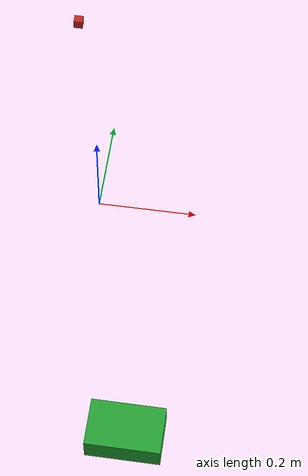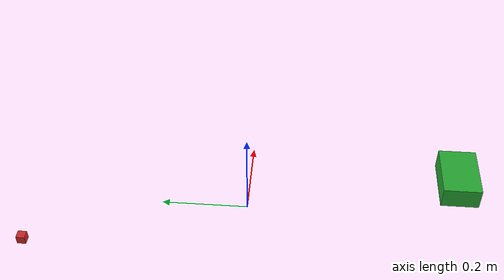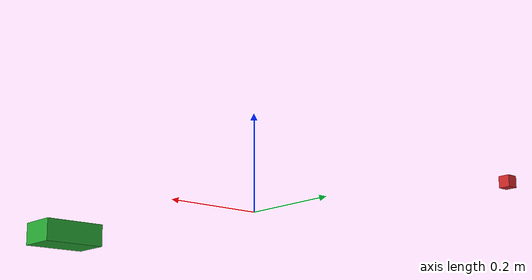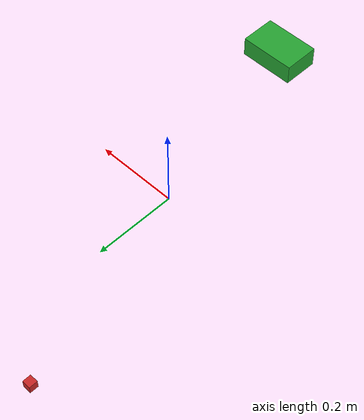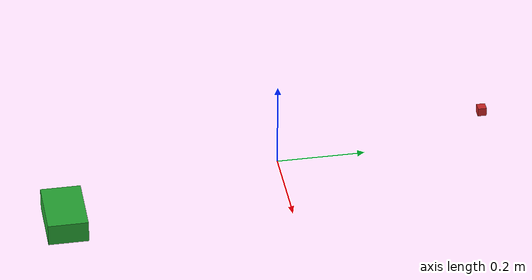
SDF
<?xml version='1.0'?>
<sdf version='1.7'>
  <model name='arm_move_models'>
    <link name='link_0'>
      <inertial>
        <mass>0.001</mass>
        <inertia>
          <ixx>7e-08</ixx>
          <ixy>0</ixy>
          <ixz>0</ixz>
          <iyy>7e-08</iyy>
          <iyz>0</iyz>
          <izz>7e-08</izz>
        </inertia>
        <pose>0 0 0 0 -0 0</pose>
      </inertial>
      <pose>-0.129588 0.500236 -0.006354 0 -0 0</pose>
      <gravity>1</gravity>
      <self_collide>0</self_collide>
      <kinematic>0</kinematic>
      <enable_wind>0</enable_wind>
      <visual name='visual'>
        <pose>0 0 0 0 -0 0</pose>
        <geometry>
          <box>
            <size>0.02 0.02 0.02</size>
          </box>
        </geometry>
        <material>
          <lighting>1</lighting>
          <script>
            <uri>file://media/materials/scripts/gazebo.material</uri>
            <name>Gazebo/Red</name>
          </script>
          <shader type='pixel'>
            <normal_map>__default__</normal_map>
          </shader>
          <ambient>0.3 0.3 0.3 1</ambient>
          <diffuse>0.7 0.7 0.7 1</diffuse>
          <specular>0.01 0.01 0.01 1</specular>
          <emissive>0 0 0 1</emissive>
        </material>
        <transparency>0</transparency>
        <cast_shadows>1</cast_shadows>
      </visual>
      <collision name='collision'>
        <laser_retro>0</laser_retro>
        <max_contacts>10</max_contacts>
        <pose>0 0 0 0 -0 0</pose>
        <geometry>
          <box>
            <size>0.02 0.02 0.02</size>
          </box>
        </geometry>
        <surface>
          <friction>
            <ode>
              <mu>100</mu>
              <mu2>100</mu2>
              <fdir1>0 0 0</fdir1>
              <slip1>0</slip1>
              <slip2>0</slip2>
            </ode>
            <torsional>
              <coefficient>1</coefficient>
              <patch_radius>0</patch_radius>
              <surface_radius>0</surface_radius>
              <use_patch_radius>1</use_patch_radius>
              <ode>
                <slip>0</slip>
              </ode>
            </torsional>
          </friction>
          <bounce>
            <restitution_coefficient>0</restitution_coefficient>
            <threshold>1e+06</threshold>
          </bounce>
          <contact>
            <collide_without_contact>0</collide_without_contact>
            <collide_without_contact_bitmask>1</collide_without_contact_bitmask>
            <collide_bitmask>1</collide_bitmask>
            <ode>
              <soft_cfm>0</soft_cfm>
              <soft_erp>0.2</soft_erp>
              <kp>1e+13</kp>
              <kd>1</kd>
              <max_vel>0.01</max_vel>
              <min_depth>0</min_depth>
            </ode>
            <bullet>
              <split_impulse>1</split_impulse>
              <split_impulse_penetration_threshold>-0.01</split_impulse_penetration_threshold>
              <soft_cfm>0</soft_cfm>
              <soft_erp>0.2</soft_erp>
              <kp>1e+13</kp>
              <kd>1</kd>
            </bullet>
          </contact>
        </surface>
      </collision>
    </link>
    <link name='link_1'>
      <inertial>
        <mass>0.1</mass>
        <inertia>
          <ixx>8.833e-05</ixx>
          <ixy>0</ixy>
          <ixz>0</ixz>
          <iyy>0.00018417</iyy>
          <iyz>0</iyz>
          <izz>0.00023083</izz>
        </inertia>
        <pose>0 0 0 0 -0 0</pose>
      </inertial>
      <pose>0.129587 -0.500236 0.006354 0 -0 0</pose>
      <gravity>1</gravity>
      <self_collide>0</self_collide>
      <kinematic>0</kinematic>
      <enable_wind>0</enable_wind>
      <visual name='visual'>
        <pose>0 0 0 0 -0 0</pose>
        <geometry>
          <box>
            <size>0.14 0.09 0.05</size>
          </box>
        </geometry>
        <material>
          <lighting>1</lighting>
          <script>
            <uri>file://media/materials/scripts/gazebo.material</uri>
            <name>Gazebo/Green</name>
          </script>
          <shader type='pixel'>
            <normal_map>__default__</normal_map>
          </shader>
          <ambient>0.3 0.3 0.3 1</ambient>
          <diffuse>0.7 0.7 0.7 1</diffuse>
          <specular>0.01 0.01 0.01 1</specular>
          <emissive>0 0 0 1</emissive>
        </material>
        <transparency>0</transparency>
        <cast_shadows>1</cast_shadows>
      </visual>
      <collision name='collision'>
        <laser_retro>0</laser_retro>
        <max_contacts>10</max_contacts>
        <pose>0 0 0 0 -0 0</pose>
        <geometry>
          <box>
            <size>0.14 0.09 0.05</size>
          </box>
        </geometry>
        <surface>
          <friction>
            <ode>
              <mu>1</mu>
              <mu2>1</mu2>
              <fdir1>0 0 0</fdir1>
              <slip1>0</slip1>
              <slip2>0</slip2>
            </ode>
            <torsional>
              <coefficient>1</coefficient>
              <patch_radius>0</patch_radius>
              <surface_radius>0</surface_radius>
              <use_patch_radius>1</use_patch_radius>
              <ode>
                <slip>0</slip>
              </ode>
            </torsional>
          </friction>
          <bounce>
            <restitution_coefficient>0</restitution_coefficient>
            <threshold>1e+06</threshold>
          </bounce>
          <contact>
            <collide_without_contact>0</collide_without_contact>
            <collide_without_contact_bitmask>1</collide_without_contact_bitmask>
            <collide_bitmask>1</collide_bitmask>
            <ode>
              <soft_cfm>0</soft_cfm>
              <soft_erp>0.2</soft_erp>
              <kp>1e+13</kp>
              <kd>1</kd>
              <max_vel>0.01</max_vel>
              <min_depth>0</min_depth>
            </ode>
            <bullet>
              <split_impulse>1</split_impulse>
              <split_impulse_penetration_threshold>-0.01</split_impulse_penetration_threshold>
              <soft_cfm>0</soft_cfm>
              <soft_erp>0.2</soft_erp>
              <kp>1e+13</kp>
              <kd>1</kd>
            </bullet>
          </contact>
        </surface>
      </collision>
    </link>
    <static>0</static>
    <allow_auto_disable>1</allow_auto_disable>
  </model>
</sdf>
